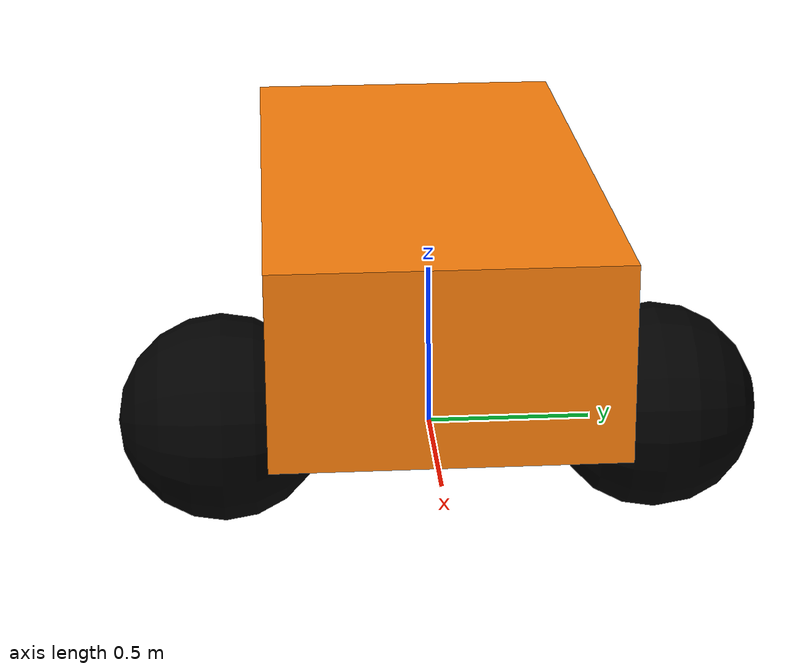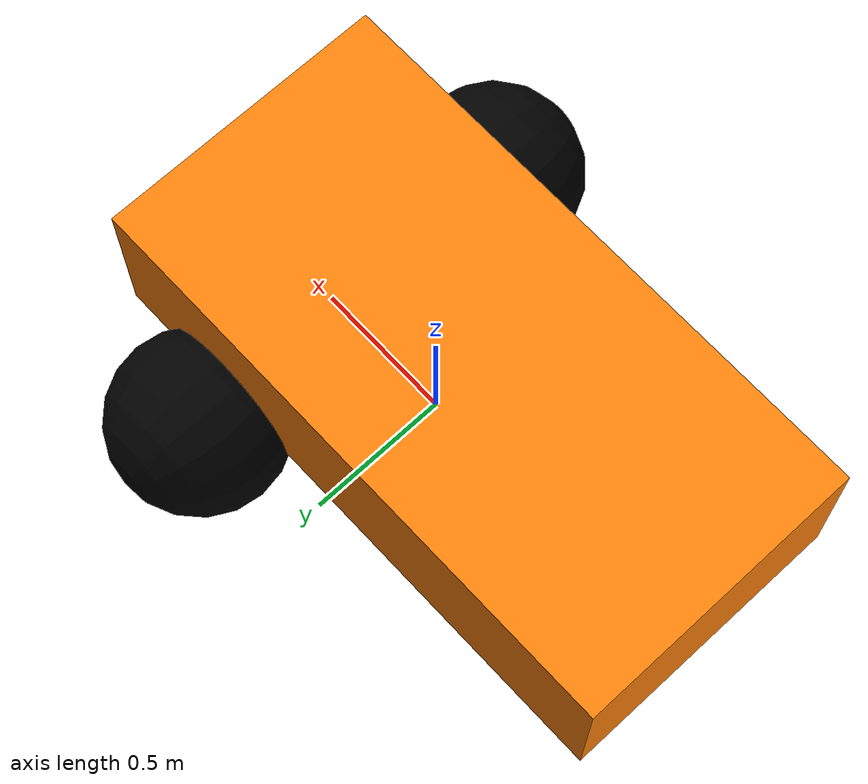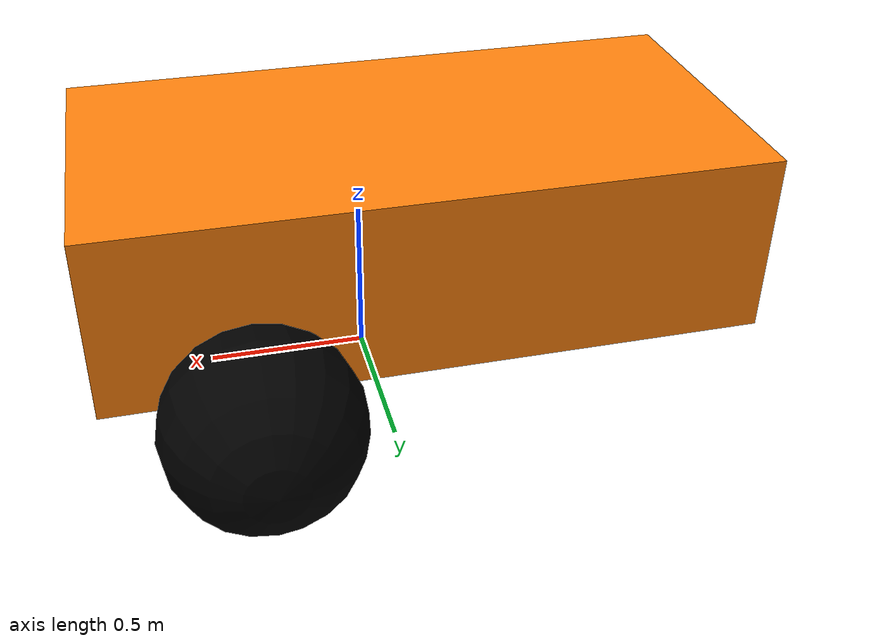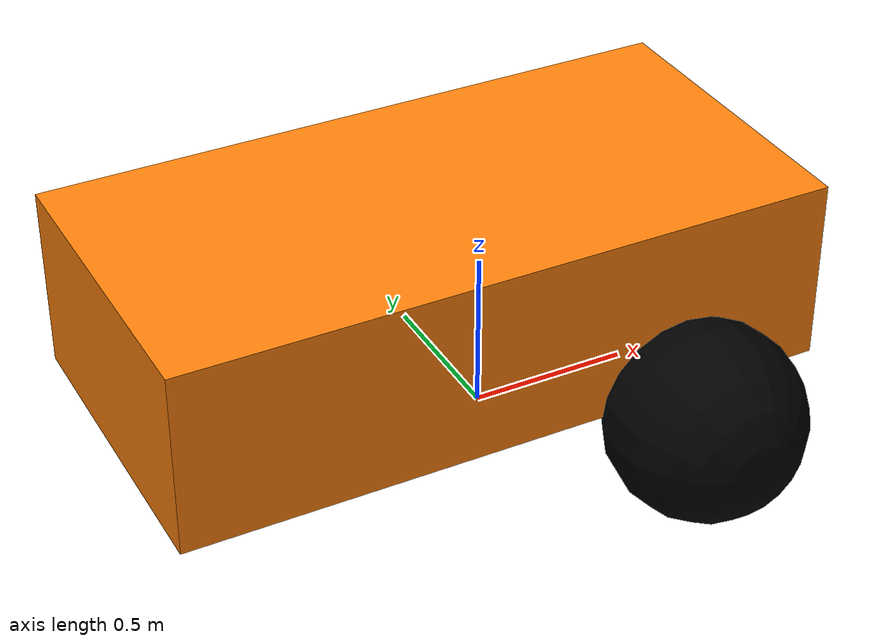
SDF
<?xml version="1.0" ?>
<sdf version="1.8" xmlns:xacro="http://www.ros.org/wiki/xacro">
  <model name="diff_drive" canonical_link="base_link">
    <link name="base_link">
      <must_be_base_link>true</must_be_base_link>
    </link>

    <joint name="chassis_joint" type="fixed">
      <parent>base_link</parent>
      <child>chassis</child>
      <pose relative_to="base_link">-0.151427 -0 0.5 0 0 0</pose>
    </joint>

    <link name="chassis">
      <pose relative_to="chassis_joint"/>
      <visual name="chassis_visual">
        <geometry>
          <box><size>
            2.01142 1 0.568726
          </size></box>
        </geometry>
        <material>
          <ambient>1 0.5088 0.0468 1</ambient>
          <diffuse>1 0.5088 0.0468 1</diffuse>
        </material>
      </visual>

      <collision name="chassis_collision">
        <geometry>
          <box><size>
            2.01142 1 0.568726
          </size></box>
        </geometry>
      </collision>

      <inertial>
        <mass>1.14395</mass>
        <inertia>
          <ixx>0.126164</ixx>
          <ixy>0.0</ixy>
          <ixz>0.0</ixz>
          <iyy>0.416519</iyy>
          <iyz>0.0</iyz>
          <izz>0.481014</izz>
        </inertia>
      </inertial>
    </link>

    <joint name="left_wheel_joint" type="revolute">
      <parent>chassis</parent>
      <child>left_wheel</child>
      <pose relative_to="chassis">0.554283 0.625029 -0.3 -1.5707 0 0</pose>
      <axis>
        <xyz>0 0 1</xyz>
        <limit>
          <lower>-inf</lower>
          <upper>inf</upper>
        </limit>
        <dynamics>
          <damping>0.2</damping>
        </dynamics>
      </axis>
    </joint>

    <link name="left_wheel">
      <pose relative_to="left_wheel_joint"/>
      <visual name="left_wheel_visual">
        <geometry>
          <sphere><radius>
            0.3
          </radius></sphere>
        </geometry>
        <material>
          <ambient>0 0 0 1</ambient>
          <diffuse>0 0 0 1</diffuse>
        </material>
      </visual>

      <collision name="left_wheel_collision">
        <geometry>
          <sphere><radius>
            0.3
          </radius></sphere>
        </geometry>
      </collision>

      <inertial>
        <mass>2</mass>
        <inertia>
          <ixx>0.145833</ixx>
          <ixy>0.0</ixy>
          <ixz>0.0</ixz>
          <iyy>0.145833</iyy>
          <iyz>0.0</iyz>
          <izz>0.125</izz>
        </inertia>
      </inertial>
    </link>

    <joint name="right_wheel_joint" type="revolute">
        <parent>chassis</parent>
        <child>right_wheel</child>
        <pose relative_to="chassis">0.554283 -0.625029 -0.3 -1.5707 0 0</pose>
        <axis>
          <xyz>0 0 1</xyz>
          <limit>
            <lower>-inf</lower>
            <upper>inf</upper>
          </limit>
          <dynamics>
            <damping>0.2</damping>
          </dynamics>
        </axis>
      </joint>

    <link name="right_wheel">
      <pose relative_to="right_wheel_joint"/>
      <visual name="right_wheel_visual">
        <geometry>
          <sphere><radius>
            0.3
          </radius></sphere>
        </geometry>
        <material>
          <ambient>0 0 0 1</ambient>
          <diffuse>0 0 0 1</diffuse>
        </material>
      </visual>

      <collision name="right_wheel_collision">
        <geometry>
          <sphere><radius>
            0.3
          </radius></sphere>
        </geometry>
      </collision>

      <inertial>
        <mass>2</mass>
        <inertia>
          <ixx>0.145833</ixx>
          <ixy>0.0</ixy>
          <ixz>0.0</ixz>
          <iyy>0.145833</iyy>
          <iyz>0.0</iyz>
          <izz>0.125</izz>
        </inertia>
      </inertial>
    </link>

    <joint name="caster_joint" type="fixed">
      <parent>chassis</parent>
      <child>caster</child>
      <pose relative_to="chassis">-0.80571 0 -0.2 0 0 0</pose>
    </joint>

    <link name="caster">
      <pose relative_to="caster_joint"/>
      <visual name="caster_visual">
        <geometry>
          <sphere><radius>
            0.2
          </radius></sphere>
        </geometry>
        <material>
          <ambient>1 1 1 1</ambient>
          <diffuse>1 1 1 1</diffuse>
        </material>
      </visual>

      <collision name="caster_collision">
        <geometry>
          <sphere><radius>
            0.2
          </radius></sphere>
        </geometry>
      </collision>

      <inertial>
        <mass>0.005</mass>
        <inertia>
          <ixx>0.1</ixx>
          <ixy>0.0</ixy>
          <ixz>0.0</ixz>
          <iyy>0.1</iyy>
          <iyz>0.0</iyz>
          <izz>0.1</izz>
        </inertia>
      </inertial>
    </link>

    <ros2_control name="GazeboSimSystem" type="system">
      <hardware>
        <plugin>gz_ros2_control/GazeboSimSystem</plugin>
      </hardware>
      <joint name="left_wheel_joint">
        <command_interface name="velocity">
          <param name="min">-1</param>
          <param name="max">1</param>
        </command_interface>
        <state_interface name="position"/>
        <state_interface name="velocity"/>
      </joint>
      <joint name="right_wheel_joint">
        <command_interface name="velocity">
          <param name="min">-1</param>
          <param name="max">1</param>
        </command_interface>
        <state_interface name="position"/>
        <state_interface name="velocity"/>
      </joint>
    </ros2_control>

    <plugin filename="gz_ros2_control-system" name="labgz_ros2_control::GazeboSimROS2ControlPlugin">
      <parameters>$(find gz_ros2_control_demos)/config/diff_drive_controller_velocity.yaml</parameters>
      <ros>
            <!-- Remap controller's cmd_vel_unstamped to standard /cmd_vel topic -->
            <remapping>/diff_drive_base_controller/cmd_vel:=/cmd_vel</remapping>
            <remapping>/diff_drive_base_controller/odom:=/odom</remapping>
        </ros>
    </plugin>

  </model>
</sdf>
